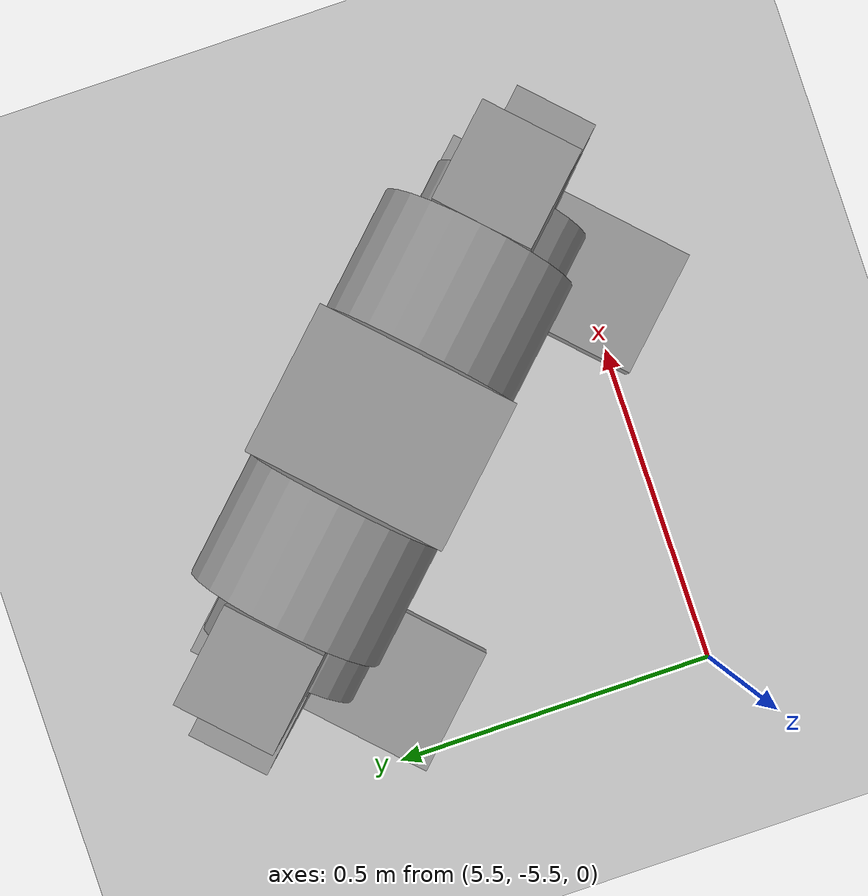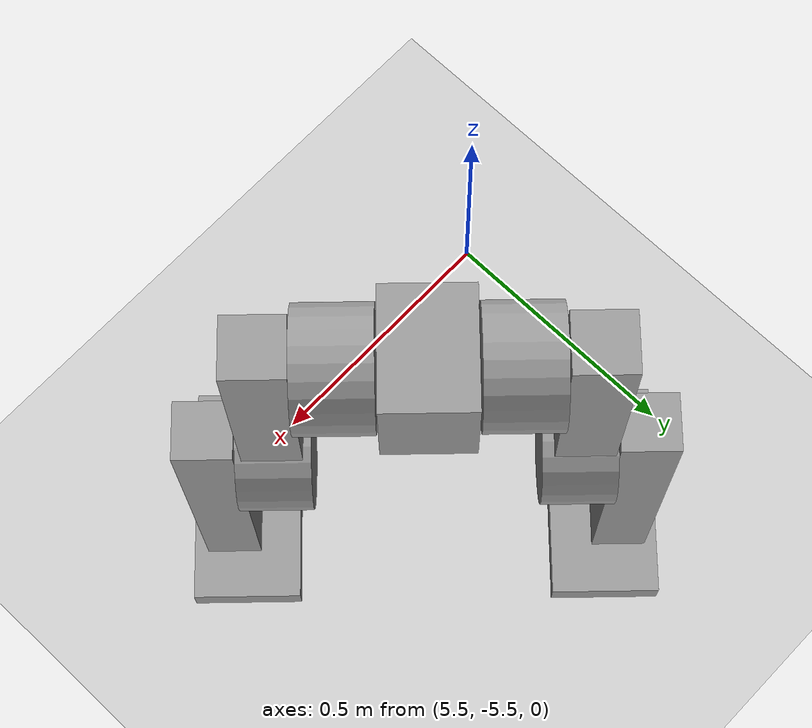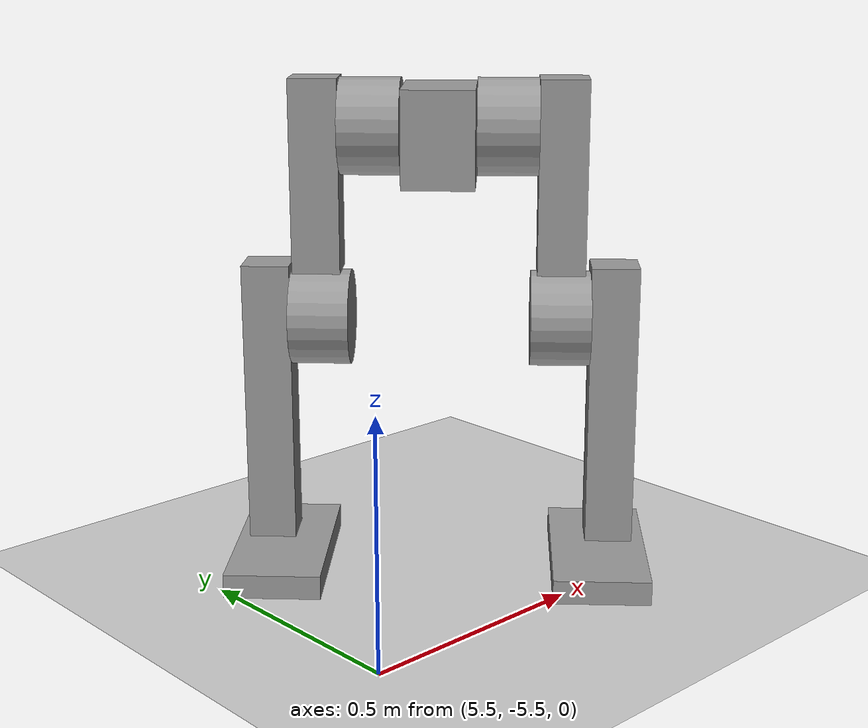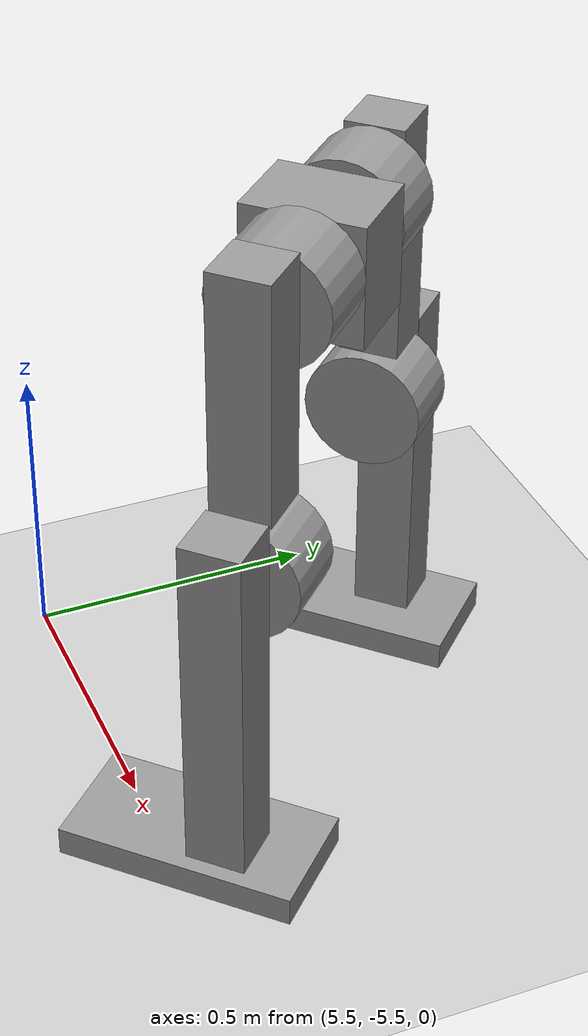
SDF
<sdf version="1.6">
 <world name="default">
  <model name="ground_plane">
   <static>1</static>
   <link name="link">
    <collision name="collision">
     <geometry><plane><normal>0 0 1</normal><size>100 100</size></plane></geometry>
     <surface><friction><ode><mu>100</mu><mu2>50</mu2></ode></friction></surface>
    </collision>
    <visual name="visual">
     <cast_shadows>0</cast_shadows>
     <geometry><plane><normal>0 0 1</normal><size>100 100</size></plane></geometry>
     <material>
      <script><uri>file://media/materials/scripts/gazebo.material</uri><name>Gazebo/Grey</name></script>
     </material>
    </visual>
   </link>
  </model>
  <model name="humanoid3_0">
   <link name="link_0_clone">
    <pose>-0.327462 1.23378 -0.128216 0 -0 0</pose>
    <inertial>
     <mass>1</mass>
     <inertia>
      <ixx>0.166667</ixx>
      <ixy>0</ixy>
      <ixz>0</ixz>
      <iyy>0.166667</iyy>
      <iyz>0</iyz>
      <izz>0.166667</izz>
     </inertia>
    </inertial>
    <visual name="visual">
     <geometry><box><size>0.4 0.2 0.05</size></box></geometry>
     <material>
      <lighting>1</lighting>
      <script><uri>file://media/materials/scripts/gazebo.material</uri><name>Gazebo/Grey</name></script>
      <ambient>0.3 0.3 0.3 1</ambient>
      <diffuse>0.7 0.7 0.7 1</diffuse>
      <specular>0.01 0.01 0.01 1</specular>
      <emissive>0 0 0 1</emissive>
      <shader type="vertex"><normal_map>__default__</normal_map></shader>
     </material>
    </visual>
    <collision name="collision">
     <geometry><box><size>0.4 0.2 0.05</size></box></geometry>
     <surface>
      <friction>
       <ode><mu>1</mu><mu2>1</mu2><fdir1>0 0 0</fdir1><slip1>0</slip1><slip2>0</slip2></ode>
       <torsional>
        <coefficient>1</coefficient>
        <patch_radius>0</patch_radius>
        <surface_radius>0</surface_radius>
        <use_patch_radius>1</use_patch_radius>
        <ode><slip>0</slip></ode>
       </torsional>
      </friction>
      <bounce><restitution_coefficient>0</restitution_coefficient><threshold>1e+06</threshold></bounce>
      <contact>
       <collide_without_contact>0</collide_without_contact>
       <collide_without_contact_bitmask>1</collide_without_contact_bitmask>
       <collide_bitmask>1</collide_bitmask>
       <ode>
        <soft_cfm>0</soft_cfm>
        <soft_erp>0.2</soft_erp>
        <kp>1e+13</kp>
        <kd>1</kd>
        <max_vel>0.01</max_vel>
        <min_depth>0</min_depth>
       </ode>
       <bullet>
        <split_impulse>1</split_impulse>
        <split_impulse_penetration_threshold>-0.01</split_impulse_penetration_threshold>
        <soft_cfm>0</soft_cfm>
        <soft_erp>0.2</soft_erp>
        <kp>1e+13</kp>
        <kd>1</kd>
       </bullet>
      </contact>
     </surface>
    </collision>
   </link>
   <link name="link_0_clone_clone">
    <pose>-0.327462 0.558836 -0.128216 0 -0 0</pose>
    <inertial>
     <mass>1</mass>
     <inertia>
      <ixx>0.166667</ixx>
      <ixy>0</ixy>
      <ixz>0</ixz>
      <iyy>0.166667</iyy>
      <iyz>0</iyz>
      <izz>0.166667</izz>
     </inertia>
    </inertial>
    <visual name="visual">
     <geometry><box><size>0.4 0.2 0.05</size></box></geometry>
     <material>
      <lighting>1</lighting>
      <script><uri>file://media/materials/scripts/gazebo.material</uri><name>Gazebo/Grey</name></script>
      <ambient>0.3 0.3 0.3 1</ambient>
      <diffuse>0.7 0.7 0.7 1</diffuse>
      <specular>0.01 0.01 0.01 1</specular>
      <emissive>0 0 0 1</emissive>
      <shader type="vertex"><normal_map>__default__</normal_map></shader>
     </material>
    </visual>
    <collision name="collision">
     <geometry><box><size>0.4 0.2 0.05</size></box></geometry>
     <surface>
      <friction>
       <ode><mu>1</mu><mu2>1</mu2><fdir1>0 0 0</fdir1><slip1>0</slip1><slip2>0</slip2></ode>
       <torsional>
        <coefficient>1</coefficient>
        <patch_radius>0</patch_radius>
        <surface_radius>0</surface_radius>
        <use_patch_radius>1</use_patch_radius>
        <ode><slip>0</slip></ode>
       </torsional>
      </friction>
      <bounce><restitution_coefficient>0</restitution_coefficient><threshold>1e+06</threshold></bounce>
      <contact>
       <collide_without_contact>0</collide_without_contact>
       <collide_without_contact_bitmask>1</collide_without_contact_bitmask>
       <collide_bitmask>1</collide_bitmask>
       <ode>
        <soft_cfm>0</soft_cfm>
        <soft_erp>0.2</soft_erp>
        <kp>1e+13</kp>
        <kd>1</kd>
        <max_vel>0.01</max_vel>
        <min_depth>0</min_depth>
       </ode>
       <bullet>
        <split_impulse>1</split_impulse>
        <split_impulse_penetration_threshold>-0.01</split_impulse_penetration_threshold>
        <soft_cfm>0</soft_cfm>
        <soft_erp>0.2</soft_erp>
        <kp>1e+13</kp>
        <kd>1</kd>
       </bullet>
      </contact>
     </surface>
    </collision>
   </link>
   <link name="link_1">
    <pose>-0.269493 0.9 0.764919 0 -0 0</pose>
    <inertial>
     <mass>1</mass>
     <inertia>
      <ixx>0.166667</ixx>
      <ixy>0</ixy>
      <ixz>0</ixz>
      <iyy>0.166667</iyy>
      <iyz>0</iyz>
      <izz>0.166667</izz>
     </inertia>
    </inertial>
    <visual name="visual">
     <geometry><box><size>0.2 0.15 0.2</size></box></geometry>
     <material>
      <lighting>1</lighting>
      <script><uri>file://media/materials/scripts/gazebo.material</uri><name>Gazebo/Grey</name></script>
      <ambient>0.3 0.3 0.3 1</ambient>
      <diffuse>0.7 0.7 0.7 1</diffuse>
      <specular>0.01 0.01 0.01 1</specular>
      <emissive>0 0 0 1</emissive>
      <shader type="vertex"><normal_map>__default__</normal_map></shader>
     </material>
    </visual>
    <collision name="collision">
     <geometry><box><size>0.2 0.15 0.2</size></box></geometry>
     <surface>
      <friction>
       <ode><mu>1</mu><mu2>1</mu2><fdir1>0 0 0</fdir1><slip1>0</slip1><slip2>0</slip2></ode>
       <torsional>
        <coefficient>1</coefficient>
        <patch_radius>0</patch_radius>
        <surface_radius>0</surface_radius>
        <use_patch_radius>1</use_patch_radius>
        <ode><slip>0</slip></ode>
       </torsional>
      </friction>
      <bounce><restitution_coefficient>0</restitution_coefficient><threshold>1e+06</threshold></bounce>
      <contact>
       <collide_without_contact>0</collide_without_contact>
       <collide_without_contact_bitmask>1</collide_without_contact_bitmask>
       <collide_bitmask>1</collide_bitmask>
       <ode>
        <soft_cfm>0</soft_cfm>
        <soft_erp>0.2</soft_erp>
        <kp>1e+13</kp>
        <kd>1</kd>
        <max_vel>0.01</max_vel>
        <min_depth>0</min_depth>
       </ode>
       <bullet>
        <split_impulse>1</split_impulse>
        <split_impulse_penetration_threshold>-0.01</split_impulse_penetration_threshold>
        <soft_cfm>0</soft_cfm>
        <soft_erp>0.2</soft_erp>
        <kp>1e+13</kp>
        <kd>1</kd>
       </bullet>
      </contact>
     </surface>
    </collision>
   </link>
   <link name="link_2">
    <pose>-0.26746 1.04068 0.781244 1.57109 -1.5566 3.1413</pose>
    <inertial>
     <mass>1</mass>
     <inertia><ixx>0.145833</ixx><ixy>0</ixy><ixz>0</ixz><iyy>0.145833</iyy><iyz>0</iyz><izz>0.125</izz></inertia>
    </inertial>
    <visual name="visual">
     <geometry><cylinder><radius>0.1</radius><length>0.125</length></cylinder></geometry>
     <material>
      <lighting>1</lighting>
      <script><uri>file://media/materials/scripts/gazebo.material</uri><name>Gazebo/Grey</name></script>
      <ambient>0.3 0.3 0.3 1</ambient>
      <diffuse>0.7 0.7 0.7 1</diffuse>
      <specular>0.01 0.01 0.01 1</specular>
      <emissive>0 0 0 1</emissive>
      <shader type="vertex"><normal_map>__default__</normal_map></shader>
     </material>
    </visual>
    <collision name="collision">
     <geometry><cylinder><radius>0.1</radius><length>0.125</length></cylinder></geometry>
     <surface>
      <friction>
       <ode><mu>1</mu><mu2>1</mu2><fdir1>0 0 0</fdir1><slip1>0</slip1><slip2>0</slip2></ode>
       <torsional>
        <coefficient>1</coefficient>
        <patch_radius>0</patch_radius>
        <surface_radius>0</surface_radius>
        <use_patch_radius>1</use_patch_radius>
        <ode><slip>0</slip></ode>
       </torsional>
      </friction>
      <bounce><restitution_coefficient>0</restitution_coefficient><threshold>1e+06</threshold></bounce>
      <contact>
       <collide_without_contact>0</collide_without_contact>
       <collide_without_contact_bitmask>1</collide_without_contact_bitmask>
       <collide_bitmask>1</collide_bitmask>
       <ode>
        <soft_cfm>0</soft_cfm>
        <soft_erp>0.2</soft_erp>
        <kp>1e+13</kp>
        <kd>1</kd>
        <max_vel>0.01</max_vel>
        <min_depth>0</min_depth>
       </ode>
       <bullet>
        <split_impulse>1</split_impulse>
        <split_impulse_penetration_threshold>-0.01</split_impulse_penetration_threshold>
        <soft_cfm>0</soft_cfm>
        <soft_erp>0.2</soft_erp>
        <kp>1e+13</kp>
        <kd>1</kd>
       </bullet>
      </contact>
     </surface>
    </collision>
   </link>
   <link name="link_2_clone">
    <pose>-0.267462 0.76 0.781244 -1.5708 -0 -0</pose>
    <inertial>
     <mass>1</mass>
     <inertia><ixx>0.145833</ixx><ixy>0</ixy><ixz>0</ixz><iyy>0.145833</iyy><iyz>0</iyz><izz>0.125</izz></inertia>
    </inertial>
    <visual name="visual">
     <geometry><cylinder><radius>0.1</radius><length>0.125</length></cylinder></geometry>
     <material>
      <lighting>1</lighting>
      <script><uri>file://media/materials/scripts/gazebo.material</uri><name>Gazebo/Grey</name></script>
      <ambient>0.3 0.3 0.3 1</ambient>
      <diffuse>0.7 0.7 0.7 1</diffuse>
      <specular>0.01 0.01 0.01 1</specular>
      <emissive>0 0 0 1</emissive>
      <shader type="vertex"><normal_map>__default__</normal_map></shader>
     </material>
    </visual>
    <collision name="collision">
     <geometry><cylinder><radius>0.1</radius><length>0.125</length></cylinder></geometry>
     <surface>
      <friction>
       <ode><mu>1</mu><mu2>1</mu2><fdir1>0 0 0</fdir1><slip1>0</slip1><slip2>0</slip2></ode>
       <torsional>
        <coefficient>1</coefficient>
        <patch_radius>0</patch_radius>
        <surface_radius>0</surface_radius>
        <use_patch_radius>1</use_patch_radius>
        <ode><slip>0</slip></ode>
       </torsional>
      </friction>
      <bounce><restitution_coefficient>0</restitution_coefficient><threshold>1e+06</threshold></bounce>
      <contact>
       <collide_without_contact>0</collide_without_contact>
       <collide_without_contact_bitmask>1</collide_without_contact_bitmask>
       <collide_bitmask>1</collide_bitmask>
       <ode>
        <soft_cfm>0</soft_cfm>
        <soft_erp>0.2</soft_erp>
        <kp>1e+13</kp>
        <kd>1</kd>
        <max_vel>0.01</max_vel>
        <min_depth>0</min_depth>
       </ode>
       <bullet>
        <split_impulse>1</split_impulse>
        <split_impulse_penetration_threshold>-0.01</split_impulse_penetration_threshold>
        <soft_cfm>0</soft_cfm>
        <soft_erp>0.2</soft_erp>
        <kp>1e+13</kp>
        <kd>1</kd>
       </bullet>
      </contact>
     </surface>
    </collision>
   </link>
   <link name="link_2_clone_0">
    <pose>-0.26901 1.14835 0.379834 1.57106 -1.5566 3.14133</pose>
    <inertial>
     <mass>1</mass>
     <inertia><ixx>0.145833</ixx><ixy>0</ixy><ixz>0</ixz><iyy>0.145833</iyy><iyz>0</iyz><izz>0.125</izz></inertia>
    </inertial>
    <visual name="visual">
     <geometry><cylinder><radius>0.1</radius><length>0.125</length></cylinder></geometry>
     <material>
      <lighting>1</lighting>
      <script><uri>file://media/materials/scripts/gazebo.material</uri><name>Gazebo/Grey</name></script>
      <ambient>0.3 0.3 0.3 1</ambient>
      <diffuse>0.7 0.7 0.7 1</diffuse>
      <specular>0.01 0.01 0.01 1</specular>
      <emissive>0 0 0 1</emissive>
      <shader type="vertex"><normal_map>__default__</normal_map></shader>
     </material>
    </visual>
    <collision name="collision">
     <geometry><cylinder><radius>0.1</radius><length>0.125</length></cylinder></geometry>
     <surface>
      <friction>
       <ode><mu>1</mu><mu2>1</mu2><fdir1>0 0 0</fdir1><slip1>0</slip1><slip2>0</slip2></ode>
       <torsional>
        <coefficient>1</coefficient>
        <patch_radius>0</patch_radius>
        <surface_radius>0</surface_radius>
        <use_patch_radius>1</use_patch_radius>
        <ode><slip>0</slip></ode>
       </torsional>
      </friction>
      <bounce><restitution_coefficient>0</restitution_coefficient><threshold>1e+06</threshold></bounce>
      <contact>
       <collide_without_contact>0</collide_without_contact>
       <collide_without_contact_bitmask>1</collide_without_contact_bitmask>
       <collide_bitmask>1</collide_bitmask>
       <ode>
        <soft_cfm>0</soft_cfm>
        <soft_erp>0.2</soft_erp>
        <kp>1e+13</kp>
        <kd>1</kd>
        <max_vel>0.01</max_vel>
        <min_depth>0</min_depth>
       </ode>
       <bullet>
        <split_impulse>1</split_impulse>
        <split_impulse_penetration_threshold>-0.01</split_impulse_penetration_threshold>
        <soft_cfm>0</soft_cfm>
        <soft_erp>0.2</soft_erp>
        <kp>1e+13</kp>
        <kd>1</kd>
       </bullet>
      </contact>
     </surface>
    </collision>
   </link>
   <link name="link_2_clone_0_clone">
    <pose>-0.265814 0.6475 0.379834 1.57106 -1.5566 3.14133</pose>
    <inertial>
     <mass>1</mass>
     <inertia><ixx>0.145833</ixx><ixy>0</ixy><ixz>0</ixz><iyy>0.145833</iyy><iyz>0</iyz><izz>0.125</izz></inertia>
    </inertial>
    <visual name="visual">
     <geometry><cylinder><radius>0.1</radius><length>0.125</length></cylinder></geometry>
     <material>
      <lighting>1</lighting>
      <script><uri>file://media/materials/scripts/gazebo.material</uri><name>Gazebo/Grey</name></script>
      <ambient>0.3 0.3 0.3 1</ambient>
      <diffuse>0.7 0.7 0.7 1</diffuse>
      <specular>0.01 0.01 0.01 1</specular>
      <emissive>0 0 0 1</emissive>
      <shader type="vertex"><normal_map>__default__</normal_map></shader>
     </material>
    </visual>
    <collision name="collision">
     <geometry><cylinder><radius>0.1</radius><length>0.125</length></cylinder></geometry>
     <surface>
      <friction>
       <ode><mu>1</mu><mu2>1</mu2><fdir1>0 0 0</fdir1><slip1>0</slip1><slip2>0</slip2></ode>
       <torsional>
        <coefficient>1</coefficient>
        <patch_radius>0</patch_radius>
        <surface_radius>0</surface_radius>
        <use_patch_radius>1</use_patch_radius>
        <ode><slip>0</slip></ode>
       </torsional>
      </friction>
      <bounce><restitution_coefficient>0</restitution_coefficient><threshold>1e+06</threshold></bounce>
      <contact>
       <collide_without_contact>0</collide_without_contact>
       <collide_without_contact_bitmask>1</collide_without_contact_bitmask>
       <collide_bitmask>1</collide_bitmask>
       <ode>
        <soft_cfm>0</soft_cfm>
        <soft_erp>0.2</soft_erp>
        <kp>1e+13</kp>
        <kd>1</kd>
        <max_vel>0.01</max_vel>
        <min_depth>0</min_depth>
       </ode>
       <bullet>
        <split_impulse>1</split_impulse>
        <split_impulse_penetration_threshold>-0.01</split_impulse_penetration_threshold>
        <soft_cfm>0</soft_cfm>
        <soft_erp>0.2</soft_erp>
        <kp>1e+13</kp>
        <kd>1</kd>
       </bullet>
      </contact>
     </surface>
    </collision>
   </link>
   <link name="link_3">
    <pose>-0.267461 1.15468 0.681244 0 -0 0</pose>
    <inertial>
     <mass>1</mass>
     <inertia>
      <ixx>0.166667</ixx>
      <ixy>0</ixy>
      <ixz>0</ixz>
      <iyy>0.166667</iyy>
      <iyz>0</iyz>
      <izz>0.166667</izz>
     </inertia>
    </inertial>
    <visual name="visual">
     <geometry><box><size>0.1 0.1 0.4</size></box></geometry>
     <material>
      <lighting>1</lighting>
      <script><uri>file://media/materials/scripts/gazebo.material</uri><name>Gazebo/Grey</name></script>
      <ambient>0.3 0.3 0.3 1</ambient>
      <diffuse>0.7 0.7 0.7 1</diffuse>
      <specular>0.01 0.01 0.01 1</specular>
      <emissive>0 0 0 1</emissive>
      <shader type="vertex"><normal_map>__default__</normal_map></shader>
     </material>
    </visual>
    <collision name="collision">
     <geometry><box><size>0.1 0.1 0.4</size></box></geometry>
     <surface>
      <friction>
       <ode><mu>1</mu><mu2>1</mu2><fdir1>0 0 0</fdir1><slip1>0</slip1><slip2>0</slip2></ode>
       <torsional>
        <coefficient>1</coefficient>
        <patch_radius>0</patch_radius>
        <surface_radius>0</surface_radius>
        <use_patch_radius>1</use_patch_radius>
        <ode><slip>0</slip></ode>
       </torsional>
      </friction>
      <bounce><restitution_coefficient>0</restitution_coefficient><threshold>1e+06</threshold></bounce>
      <contact>
       <collide_without_contact>0</collide_without_contact>
       <collide_without_contact_bitmask>1</collide_without_contact_bitmask>
       <collide_bitmask>1</collide_bitmask>
       <ode>
        <soft_cfm>0</soft_cfm>
        <soft_erp>0.2</soft_erp>
        <kp>1e+13</kp>
        <kd>1</kd>
        <max_vel>0.01</max_vel>
        <min_depth>0</min_depth>
       </ode>
       <bullet>
        <split_impulse>1</split_impulse>
        <split_impulse_penetration_threshold>-0.01</split_impulse_penetration_threshold>
        <soft_cfm>0</soft_cfm>
        <soft_erp>0.2</soft_erp>
        <kp>1e+13</kp>
        <kd>1</kd>
       </bullet>
      </contact>
     </surface>
    </collision>
   </link>
   <link name="link_3_clone">
    <pose>-0.267462 0.6475 0.681244 0 -0 0</pose>
    <inertial>
     <mass>1</mass>
     <inertia>
      <ixx>0.166667</ixx>
      <ixy>0</ixy>
      <ixz>0</ixz>
      <iyy>0.166667</iyy>
      <iyz>0</iyz>
      <izz>0.166667</izz>
     </inertia>
    </inertial>
    <visual name="visual">
     <geometry><box><size>0.1 0.1 0.4</size></box></geometry>
     <material>
      <lighting>1</lighting>
      <script><uri>file://media/materials/scripts/gazebo.material</uri><name>Gazebo/Grey</name></script>
      <ambient>0.3 0.3 0.3 1</ambient>
      <diffuse>0.7 0.7 0.7 1</diffuse>
      <specular>0.01 0.01 0.01 1</specular>
      <emissive>0 0 0 1</emissive>
      <shader type="vertex"><normal_map>__default__</normal_map></shader>
     </material>
    </visual>
    <collision name="collision">
     <geometry><box><size>0.1 0.1 0.4</size></box></geometry>
     <surface>
      <friction>
       <ode><mu>1</mu><mu2>1</mu2><fdir1>0 0 0</fdir1><slip1>0</slip1><slip2>0</slip2></ode>
       <torsional>
        <coefficient>1</coefficient>
        <patch_radius>0</patch_radius>
        <surface_radius>0</surface_radius>
        <use_patch_radius>1</use_patch_radius>
        <ode><slip>0</slip></ode>
       </torsional>
      </friction>
      <bounce><restitution_coefficient>0</restitution_coefficient><threshold>1e+06</threshold></bounce>
      <contact>
       <collide_without_contact>0</collide_without_contact>
       <collide_without_contact_bitmask>1</collide_without_contact_bitmask>
       <collide_bitmask>1</collide_bitmask>
       <ode>
        <soft_cfm>0</soft_cfm>
        <soft_erp>0.2</soft_erp>
        <kp>1e+13</kp>
        <kd>1</kd>
        <max_vel>0.01</max_vel>
        <min_depth>0</min_depth>
       </ode>
       <bullet>
        <split_impulse>1</split_impulse>
        <split_impulse_penetration_threshold>-0.01</split_impulse_penetration_threshold>
        <soft_cfm>0</soft_cfm>
        <soft_erp>0.2</soft_erp>
        <kp>1e+13</kp>
        <kd>1</kd>
       </bullet>
      </contact>
     </surface>
    </collision>
   </link>
   <link name="link_3_clone_0">
    <pose>-0.26901 1.26085 0.196784 0 -0 0</pose>
    <inertial>
     <mass>1</mass>
     <inertia>
      <ixx>0.166667</ixx>
      <ixy>0</ixy>
      <ixz>0</ixz>
      <iyy>0.166667</iyy>
      <iyz>0</iyz>
      <izz>0.166667</izz>
     </inertia>
    </inertial>
    <visual name="visual">
     <geometry><box><size>0.1 0.1 0.6</size></box></geometry>
     <material>
      <lighting>1</lighting>
      <script><uri>file://media/materials/scripts/gazebo.material</uri><name>Gazebo/Grey</name></script>
      <ambient>0.3 0.3 0.3 1</ambient>
      <diffuse>0.7 0.7 0.7 1</diffuse>
      <specular>0.01 0.01 0.01 1</specular>
      <emissive>0 0 0 1</emissive>
      <shader type="vertex"><normal_map>__default__</normal_map></shader>
     </material>
    </visual>
    <collision name="collision">
     <geometry><box><size>0.1 0.1 0.6</size></box></geometry>
     <surface>
      <friction>
       <ode><mu>1</mu><mu2>1</mu2><fdir1>0 0 0</fdir1><slip1>0</slip1><slip2>0</slip2></ode>
       <torsional>
        <coefficient>1</coefficient>
        <patch_radius>0</patch_radius>
        <surface_radius>0</surface_radius>
        <use_patch_radius>1</use_patch_radius>
        <ode><slip>0</slip></ode>
       </torsional>
      </friction>
      <bounce><restitution_coefficient>0</restitution_coefficient><threshold>1e+06</threshold></bounce>
      <contact>
       <collide_without_contact>0</collide_without_contact>
       <collide_without_contact_bitmask>1</collide_without_contact_bitmask>
       <collide_bitmask>1</collide_bitmask>
       <ode>
        <soft_cfm>0</soft_cfm>
        <soft_erp>0.2</soft_erp>
        <kp>1e+13</kp>
        <kd>1</kd>
        <max_vel>0.01</max_vel>
        <min_depth>0</min_depth>
       </ode>
       <bullet>
        <split_impulse>1</split_impulse>
        <split_impulse_penetration_threshold>-0.01</split_impulse_penetration_threshold>
        <soft_cfm>0</soft_cfm>
        <soft_erp>0.2</soft_erp>
        <kp>1e+13</kp>
        <kd>1</kd>
       </bullet>
      </contact>
     </surface>
    </collision>
   </link>
   <link name="link_3_clone_0_clone">
    <pose>-0.265814 0.535 0.196784 0 -0 0</pose>
    <inertial>
     <mass>1</mass>
     <inertia>
      <ixx>0.166667</ixx>
      <ixy>0</ixy>
      <ixz>0</ixz>
      <iyy>0.166667</iyy>
      <iyz>0</iyz>
      <izz>0.166667</izz>
     </inertia>
    </inertial>
    <visual name="visual">
     <geometry><box><size>0.1 0.1 0.6</size></box></geometry>
     <material>
      <lighting>1</lighting>
      <script><uri>file://media/materials/scripts/gazebo.material</uri><name>Gazebo/Grey</name></script>
      <ambient>0.3 0.3 0.3 1</ambient>
      <diffuse>0.7 0.7 0.7 1</diffuse>
      <specular>0.01 0.01 0.01 1</specular>
      <emissive>0 0 0 1</emissive>
      <shader type="vertex"><normal_map>__default__</normal_map></shader>
     </material>
    </visual>
    <collision name="collision">
     <geometry><box><size>0.1 0.1 0.6</size></box></geometry>
     <surface>
      <friction>
       <ode><mu>1</mu><mu2>1</mu2><fdir1>0 0 0</fdir1><slip1>0</slip1><slip2>0</slip2></ode>
       <torsional>
        <coefficient>1</coefficient>
        <patch_radius>0</patch_radius>
        <surface_radius>0</surface_radius>
        <use_patch_radius>1</use_patch_radius>
        <ode><slip>0</slip></ode>
       </torsional>
      </friction>
      <bounce><restitution_coefficient>0</restitution_coefficient><threshold>1e+06</threshold></bounce>
      <contact>
       <collide_without_contact>0</collide_without_contact>
       <collide_without_contact_bitmask>1</collide_without_contact_bitmask>
       <collide_bitmask>1</collide_bitmask>
       <ode>
        <soft_cfm>0</soft_cfm>
        <soft_erp>0.2</soft_erp>
        <kp>1e+13</kp>
        <kd>1</kd>
        <max_vel>0.01</max_vel>
        <min_depth>0</min_depth>
       </ode>
       <bullet>
        <split_impulse>1</split_impulse>
        <split_impulse_penetration_threshold>-0.01</split_impulse_penetration_threshold>
        <soft_cfm>0</soft_cfm>
        <soft_erp>0.2</soft_erp>
        <kp>1e+13</kp>
        <kd>1</kd>
       </bullet>
      </contact>
     </surface>
    </collision>
   </link>
   <joint name="link_1_JOINT_0" type="revolute">
    <parent>link_1</parent>
    <child>link_2</child>
    <axis>
     <xyz>0 0 -1</xyz>
     <use_parent_model_frame>0</use_parent_model_frame>
     <limit>
      <lower>-1.79769e+308</lower>
      <upper>1.79769e+308</upper>
      <effort>-1</effort>
      <velocity>-1</velocity>
     </limit>
     <dynamics>
      <spring_reference>0</spring_reference>
      <spring_stiffness>0</spring_stiffness>
      <damping>0</damping>
      <friction>0</friction>
     </dynamics>
    </axis>
    <physics>
     <ode><limit><cfm>0</cfm><erp>0.2</erp></limit><suspension><cfm>0</cfm><erp>0.2</erp></suspension></ode>
    </physics>
   </joint>
   <joint name="link_1_JOINT_1" type="revolute">
    <parent>link_1</parent>
    <child>link_2_clone</child>
    <axis>
     <xyz>0 0 1</xyz>
     <use_parent_model_frame>0</use_parent_model_frame>
     <limit>
      <lower>-1.79769e+308</lower>
      <upper>1.79769e+308</upper>
      <effort>-1</effort>
      <velocity>-1</velocity>
     </limit>
     <dynamics>
      <spring_reference>0</spring_reference>
      <spring_stiffness>0</spring_stiffness>
      <damping>0</damping>
      <friction>0</friction>
     </dynamics>
    </axis>
    <physics>
     <ode><limit><cfm>0</cfm><erp>0.2</erp></limit><suspension><cfm>0</cfm><erp>0.2</erp></suspension></ode>
    </physics>
   </joint>
   <joint name="link_2_JOINT_2" type="fixed">
    <parent>link_2</parent>
    <child>link_3</child>
    <pose>0 0 0.1 0 -0 0</pose>
    <physics>
     <ode><limit><cfm>0</cfm><erp>0.2</erp></limit><suspension><cfm>0</cfm><erp>0.2</erp></suspension></ode>
    </physics>
   </joint>
   <joint name="link_2_clone_0_JOINT_8" type="revolute">
    <parent>link_2_clone_0</parent>
    <child>link_3_clone_0</child>
    <pose>0 0 0.18 0 -0 0</pose>
    <axis>
     <xyz>0 -1 0</xyz>
     <use_parent_model_frame>0</use_parent_model_frame>
     <limit>
      <lower>-1.79769e+308</lower>
      <upper>1.79769e+308</upper>
      <effort>-1</effort>
      <velocity>-1</velocity>
     </limit>
     <dynamics>
      <spring_reference>0</spring_reference>
      <spring_stiffness>0</spring_stiffness>
      <damping>0</damping>
      <friction>0</friction>
     </dynamics>
    </axis>
    <physics>
     <ode><limit><cfm>0</cfm><erp>0.2</erp></limit><suspension><cfm>0</cfm><erp>0.2</erp></suspension></ode>
    </physics>
   </joint>
   <joint name="link_2_clone_0_clone_JOINT_9" type="revolute">
    <parent>link_2_clone_0_clone</parent>
    <child>link_3_clone_0_clone</child>
    <pose>0 0 0.18 0 -0 0</pose>
    <axis>
     <xyz>0 1 0</xyz>
     <use_parent_model_frame>0</use_parent_model_frame>
     <limit>
      <lower>-1.79769e+308</lower>
      <upper>1.79769e+308</upper>
      <effort>-1</effort>
      <velocity>-1</velocity>
     </limit>
     <dynamics>
      <spring_reference>0</spring_reference>
      <spring_stiffness>0</spring_stiffness>
      <damping>0</damping>
      <friction>0</friction>
     </dynamics>
    </axis>
    <physics>
     <ode><limit><cfm>0</cfm><erp>0.2</erp></limit><suspension><cfm>0</cfm><erp>0.2</erp></suspension></ode>
    </physics>
   </joint>
   <joint name="link_2_clone_JOINT_3" type="fixed">
    <parent>link_2_clone</parent>
    <child>link_3_clone</child>
    <pose>0 0 0.1 0 -0 0</pose>
    <physics>
     <ode><limit><cfm>0</cfm><erp>0.2</erp></limit><suspension><cfm>0</cfm><erp>0.2</erp></suspension></ode>
    </physics>
   </joint>
   <joint name="link_3_JOINT_6" type="fixed">
    <parent>link_3</parent>
    <child>link_2_clone_0</child>
    <physics>
     <ode><limit><cfm>0</cfm><erp>0.2</erp></limit><suspension><cfm>0</cfm><erp>0.2</erp></suspension></ode>
    </physics>
   </joint>
   <joint name="link_3_clone_0_JOINT_10" type="fixed">
    <parent>link_3_clone_0</parent>
    <child>link_0_clone</child>
    <physics>
     <ode><limit><cfm>0</cfm><erp>0.2</erp></limit><suspension><cfm>0</cfm><erp>0.2</erp></suspension></ode>
    </physics>
   </joint>
   <joint name="link_3_clone_0_clone_JOINT_12" type="fixed">
    <parent>link_3_clone_0_clone</parent>
    <child>link_0_clone_clone</child>
    <physics>
     <ode><limit><cfm>0</cfm><erp>0.2</erp></limit><suspension><cfm>0</cfm><erp>0.2</erp></suspension></ode>
    </physics>
   </joint>
   <joint name="link_3_clone_JOINT_7" type="fixed">
    <parent>link_3_clone</parent>
    <child>link_2_clone_0_clone</child>
    <physics>
     <ode><limit><cfm>0</cfm><erp>0.2</erp></limit><suspension><cfm>0</cfm><erp>0.2</erp></suspension></ode>
    </physics>
   </joint>
   <static>0</static>
   <pose>6.79134 -5.61943 0.153223 -9e-06 -0 0.774748</pose>
  </model>
 </world>
</sdf>
